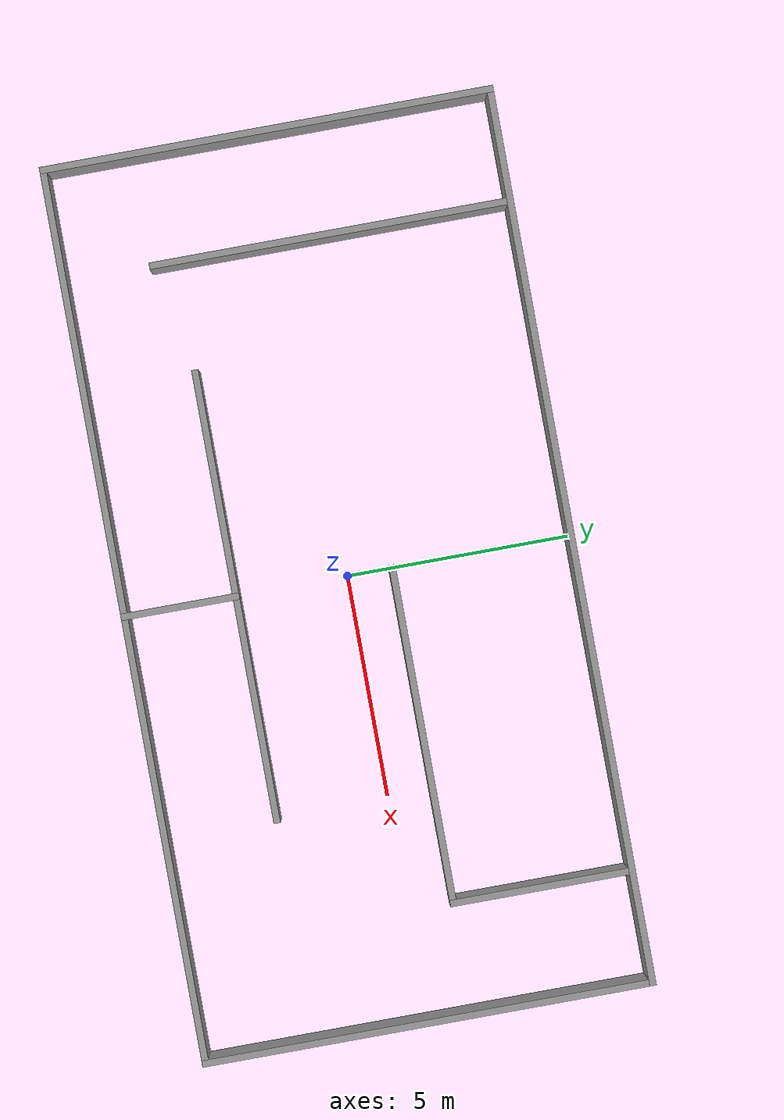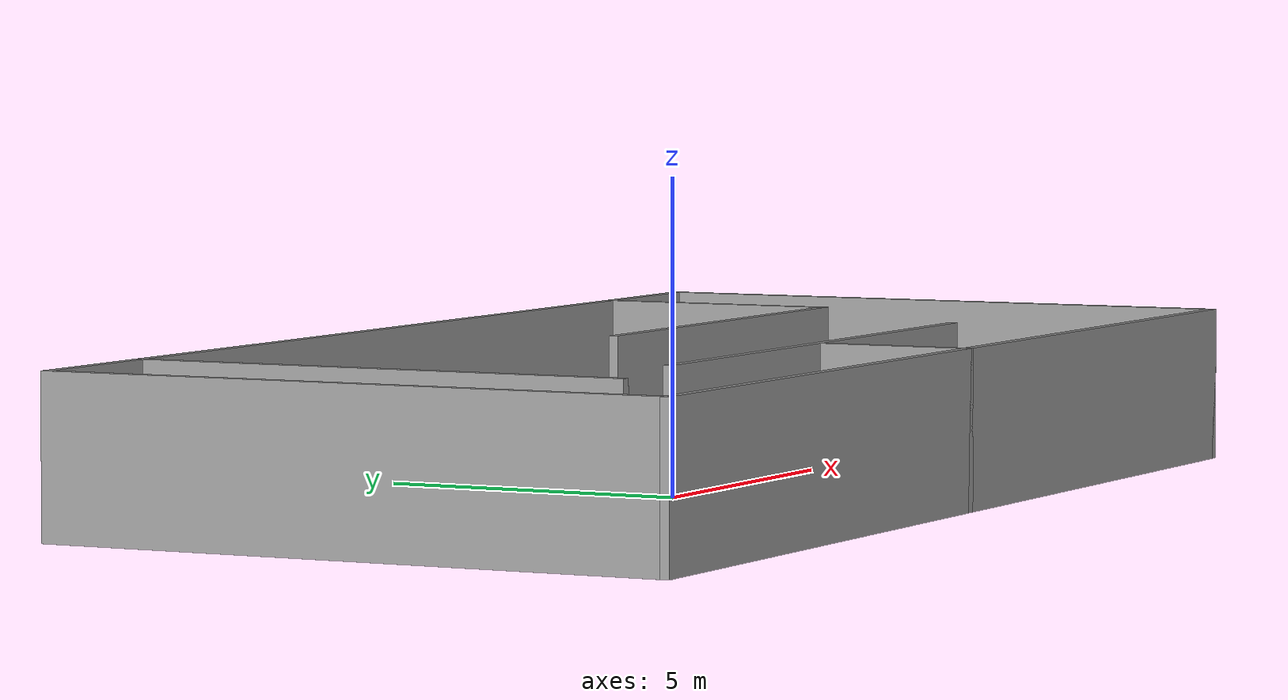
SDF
<?xml version='1.0'?>
<sdf version='1.6'>
  <model name='maze'>
    <pose frame=''>0 0 0 0 -0 0</pose>
    <link name='Wall_0'>
      <collision name='Wall_0_Collision'>
        <geometry>
          <box>
            <size>10.15 0.15 2.5</size>
          </box>
        </geometry>
        <pose frame=''>0 0 1.25 0 -0 0</pose>
      </collision>
      <visual name='Wall_0_Visual'>
        <pose frame=''>0 0 1.25 0 -0 0</pose>
        <geometry>
          <box>
            <size>10.15 0.15 2.5</size>
          </box>
        </geometry>
        <material>
          <script>
            <uri>file://media/materials/scripts/gazebo.material</uri>
            <name>Gazebo/Grey</name>
          </script>
          <ambient>1 1 1 1</ambient>
        </material>
        <meta>
          <layer>0</layer>
        </meta>
      </visual>
      <pose frame=''>-10 0 0 0 -0 1.5708</pose>
    </link>
    <link name='Wall_1'>
      <collision name='Wall_1_Collision'>
        <geometry>
          <box>
            <size>20.15 0.15 2.5</size>
          </box>
        </geometry>
        <pose frame=''>0 0 1.25 0 -0 0</pose>
      </collision>
      <visual name='Wall_1_Visual'>
        <pose frame=''>0 0 1.25 0 -0 0</pose>
        <geometry>
          <box>
            <size>20.15 0.15 2.5</size>
          </box>
        </geometry>
        <material>
          <script>
            <uri>file://media/materials/scripts/gazebo.material</uri>
            <name>Gazebo/Grey</name>
          </script>
          <ambient>1 1 1 1</ambient>
        </material>
        <meta>
          <layer>0</layer>
        </meta>
      </visual>
      <pose frame=''>0 5 0 0 -0 0</pose>
    </link>
    <link name='Wall_11'>
      <collision name='Wall_11_Collision'>
        <geometry>
          <box>
            <size>2.65 0.15 2.5</size>
          </box>
        </geometry>
        <pose frame=''>0 0 1.25 0 -0 0</pose>
      </collision>
      <visual name='Wall_11_Visual'>
        <pose frame=''>0 0 1.25 0 -0 0</pose>
        <geometry>
          <box>
            <size>2.65 0.15 2.5</size>
          </box>
        </geometry>
        <material>
          <script>
            <uri>file://media/materials/scripts/gazebo.material</uri>
            <name>Gazebo/Grey</name>
          </script>
          <ambient>1 1 1 1</ambient>
        </material>
        <meta>
          <layer>0</layer>
        </meta>
      </visual>
      <pose frame=''>0 -3.75 0 0 -0 1.5708</pose>
    </link>
    <link name='Wall_13'>
      <collision name='Wall_13_Collision'>
        <geometry>
          <box>
            <size>10.15 0.15 2.5</size>
          </box>
        </geometry>
        <pose frame=''>0 0 1.25 0 -0 0</pose>
      </collision>
      <visual name='Wall_13_Visual'>
        <pose frame=''>0 0 1.25 0 -0 0</pose>
        <geometry>
          <box>
            <size>10.15 0.15 2.5</size>
          </box>
        </geometry>
        <material>
          <script>
            <uri>file://media/materials/scripts/gazebo.material</uri>
            <name>Gazebo/Grey</name>
          </script>
          <ambient>1 1 1 1</ambient>
        </material>
        <meta>
          <layer>0</layer>
        </meta>
      </visual>
      <pose frame=''>0 -2.5 0 0 -0 0</pose>
    </link>
    <link name='Wall_15'>
      <collision name='Wall_15_Collision'>
        <geometry>
          <box>
            <size>4.15 0.15 2.5</size>
          </box>
        </geometry>
        <pose frame=''>0 0 1.25 0 -0 0</pose>
      </collision>
      <visual name='Wall_15_Visual'>
        <pose frame=''>0 0 1.25 0 -0 0</pose>
        <geometry>
          <box>
            <size>4.15 0.15 2.5</size>
          </box>
        </geometry>
        <material>
          <script>
            <uri>file://media/materials/scripts/gazebo.material</uri>
            <name>Gazebo/Grey</name>
          </script>
          <ambient>1 1 1 1</ambient>
        </material>
        <meta>
          <layer>0</layer>
        </meta>
      </visual>
      <pose frame=''>7.5 3 0 0 -0 -1.5708</pose>
    </link>
    <link name='Wall_16'>
      <collision name='Wall_16_Collision'>
        <geometry>
          <box>
            <size>7.65 0.15 2.5</size>
          </box>
        </geometry>
        <pose frame=''>0 0 1.25 0 -0 0</pose>
      </collision>
      <visual name='Wall_16_Visual'>
        <pose frame=''>0 0 1.25 0 -0 0</pose>
        <geometry>
          <box>
            <size>7.65 0.15 2.5</size>
          </box>
        </geometry>
        <material>
          <script>
            <uri>file://media/materials/scripts/gazebo.material</uri>
            <name>Gazebo/Grey</name>
          </script>
          <ambient>1 1 1 1</ambient>
        </material>
        <meta>
          <layer>0</layer>
        </meta>
      </visual>
      <pose frame=''>3.75 1 0 0 -0 3.14159</pose>
    </link>
    <link name='Wall_2'>
      <collision name='Wall_2_Collision'>
        <geometry>
          <box>
            <size>10.15 0.15 2.5</size>
          </box>
        </geometry>
        <pose frame=''>0 0 1.25 0 -0 0</pose>
      </collision>
      <visual name='Wall_2_Visual'>
        <pose frame=''>0 0 1.25 0 -0 0</pose>
        <geometry>
          <box>
            <size>10.15 0.15 2.5</size>
          </box>
        </geometry>
        <material>
          <script>
            <uri>file://media/materials/scripts/gazebo.material</uri>
            <name>Gazebo/Grey</name>
          </script>
          <ambient>1 1 1 1</ambient>
        </material>
        <meta>
          <layer>0</layer>
        </meta>
      </visual>
      <pose frame=''>10 0 0 0 -0 -1.5708</pose>
    </link>
    <link name='Wall_7'>
      <collision name='Wall_7_Collision'>
        <geometry>
          <box>
            <size>20.15 0.15 2.5</size>
          </box>
        </geometry>
        <pose frame=''>0 0 1.25 0 -0 0</pose>
      </collision>
      <visual name='Wall_7_Visual'>
        <pose frame=''>0 0 1.25 0 -0 0</pose>
        <geometry>
          <box>
            <size>20.15 0.15 2.5</size>
          </box>
        </geometry>
        <material>
          <script>
            <uri>file://media/materials/scripts/gazebo.material</uri>
            <name>Gazebo/Grey</name>
          </script>
          <ambient>1 1 1 1</ambient>
        </material>
        <meta>
          <layer>0</layer>
        </meta>
      </visual>
      <pose frame=''>0 -5 0 0 -0 0</pose>
    </link>
    <link name='Wall_9'>
      <collision name='Wall_9_Collision'>
        <geometry>
          <box>
            <size>8.15 0.15 2.5</size>
          </box>
        </geometry>
        <pose frame=''>0 0 1.25 0 -0 0</pose>
      </collision>
      <visual name='Wall_9_Visual'>
        <pose frame=''>0 0 1.25 0 -0 0</pose>
        <geometry>
          <box>
            <size>8.15 0.15 2.5</size>
          </box>
        </geometry>
        <material>
          <script>
            <uri>file://media/materials/scripts/gazebo.material</uri>
            <name>Gazebo/Grey</name>
          </script>
          <ambient>1 1 1 1</ambient>
        </material>
        <meta>
          <layer>0</layer>
        </meta>
      </visual>
      <pose frame=''>-7.5 1 0 0 -0 -1.5708</pose>
    </link>
    <static>1</static>
  </model>
</sdf>
